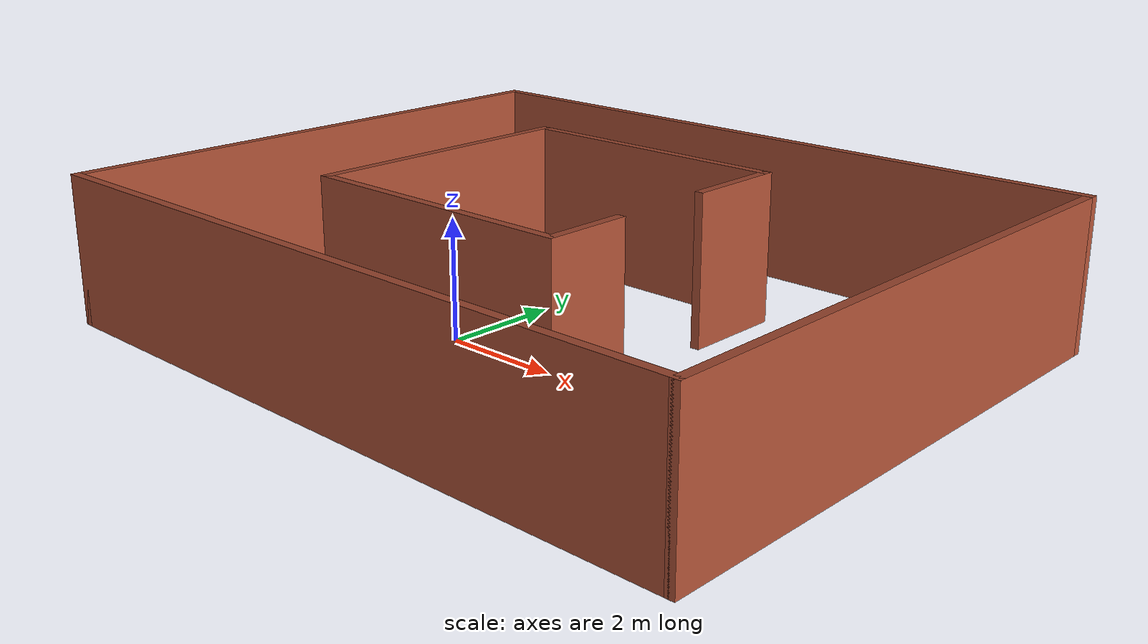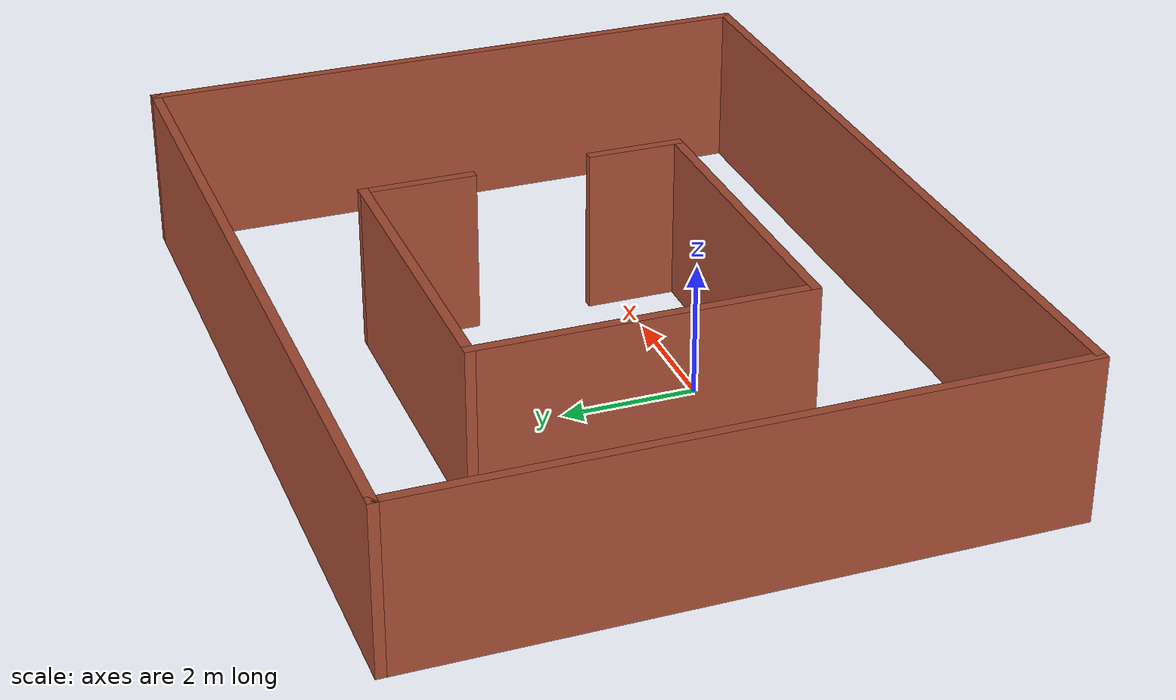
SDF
<sdf version='1.7'>
  <model name='test_world1'>
    <pose>1.22097 1.27622 0 0 -0 0</pose>
    <link name='Wall_10'>
      <collision name='Wall_10_Collision'>
        <geometry>
          <box>
            <size>5 0.15 2.5</size>
          </box>
        </geometry>
        <pose>0 0 1.25 0 -0 0</pose>
      </collision>
      <visual name='Wall_10_Visual'>
        <pose>0 0 1.25 0 -0 0</pose>
        <geometry>
          <box>
            <size>5 0.15 2.5</size>
          </box>
        </geometry>
        <material>
          <script>
            <uri>file://media/materials/scripts/gazebo.material</uri>
            <name>Gazebo/Bricks</name>
          </script>
          <ambient>1 1 1 1</ambient>
        </material>
        <meta>
          <layer>0</layer>
        </meta>
      </visual>
      <pose>-3.12882 0.256793 0 0 -0 -1.5708</pose>
    </link>
    <link name='Wall_11'>
      <collision name='Wall_11_Collision'>
        <geometry>
          <box>
            <size>5 0.15 2.5</size>
          </box>
        </geometry>
        <pose>0 0 1.25 0 -0 0</pose>
      </collision>
      <visual name='Wall_11_Visual'>
        <pose>0 0 1.25 0 -0 0</pose>
        <geometry>
          <box>
            <size>5 0.15 2.5</size>
          </box>
        </geometry>
        <material>
          <script>
            <uri>file://media/materials/scripts/gazebo.material</uri>
            <name>Gazebo/Bricks</name>
          </script>
          <ambient>1 1 1 1</ambient>
        </material>
        <meta>
          <layer>0</layer>
        </meta>
      </visual>
      <pose>-0.703824 -2.16821 0 0 -0 0</pose>
    </link>
    <link name='Wall_15'>
      <collision name='Wall_15_Collision'>
        <geometry>
          <box>
            <size>1.75 0.15 2.5</size>
          </box>
        </geometry>
        <pose>0 0 1.25 0 -0 0</pose>
      </collision>
      <visual name='Wall_15_Visual'>
        <pose>0 0 1.25 0 -0 0</pose>
        <geometry>
          <box>
            <size>1.75 0.15 2.5</size>
          </box>
        </geometry>
        <material>
          <script>
            <uri>file://media/materials/scripts/gazebo.material</uri>
            <name>Gazebo/Bricks</name>
          </script>
          <ambient>1 1 1 1</ambient>
        </material>
        <meta>
          <layer>0</layer>
        </meta>
      </visual>
      <pose>1.72118 1.88179 0 0 -0 -1.5708</pose>
    </link>
    <link name='Wall_17'>
      <collision name='Wall_17_Collision'>
        <geometry>
          <box>
            <size>1.5 0.15 2.5</size>
          </box>
        </geometry>
        <pose>0 0 1.25 0 -0 0</pose>
      </collision>
      <visual name='Wall_17_Visual'>
        <pose>0 0 1.25 0 -0 0</pose>
        <geometry>
          <box>
            <size>1.5 0.15 2.5</size>
          </box>
        </geometry>
        <material>
          <script>
            <uri>file://media/materials/scripts/gazebo.material</uri>
            <name>Gazebo/Bricks</name>
          </script>
          <ambient>1 1 1 1</ambient>
        </material>
        <meta>
          <layer>0</layer>
        </meta>
      </visual>
      <pose>1.72118 -1.49321 0 0 -0 1.5708</pose>
    </link>
    <link name='Wall_4'>
      <collision name='Wall_4_Collision'>
        <geometry>
          <box>
            <size>9.75 0.15 2.5</size>
          </box>
        </geometry>
        <pose>0 0 1.25 0 -0 0</pose>
      </collision>
      <visual name='Wall_4_Visual'>
        <pose>0 0 1.25 0 -0 0</pose>
        <geometry>
          <box>
            <size>9.75 0.15 2.5</size>
          </box>
        </geometry>
        <material>
          <script>
            <uri>file://media/materials/scripts/gazebo.material</uri>
            <name>Gazebo/Bricks</name>
          </script>
          <ambient>1 1 1 1</ambient>
        </material>
        <meta>
          <layer>0</layer>
        </meta>
      </visual>
      <pose>-6.05 -0 0 0 -0 -1.5708</pose>
    </link>
    <link name='Wall_5'>
      <collision name='Wall_5_Collision'>
        <geometry>
          <box>
            <size>12.25 0.15 2.5</size>
          </box>
        </geometry>
        <pose>0 0 1.25 0 -0 0</pose>
      </collision>
      <visual name='Wall_5_Visual'>
        <pose>0 0 1.25 0 -0 0</pose>
        <geometry>
          <box>
            <size>12.25 0.15 2.5</size>
          </box>
        </geometry>
        <material>
          <script>
            <uri>file://media/materials/scripts/gazebo.material</uri>
            <name>Gazebo/Bricks</name>
          </script>
          <ambient>1 1 1 1</ambient>
        </material>
        <meta>
          <layer>0</layer>
        </meta>
      </visual>
      <pose>-0 -4.8 0 0 -0 0</pose>
    </link>
    <link name='Wall_6'>
      <collision name='Wall_6_Collision'>
        <geometry>
          <box>
            <size>9.75 0.15 2.5</size>
          </box>
        </geometry>
        <pose>0 0 1.25 0 -0 0</pose>
      </collision>
      <visual name='Wall_6_Visual'>
        <pose>0 0 1.25 0 -0 0</pose>
        <geometry>
          <box>
            <size>9.75 0.15 2.5</size>
          </box>
        </geometry>
        <material>
          <script>
            <uri>file://media/materials/scripts/gazebo.material</uri>
            <name>Gazebo/Bricks</name>
          </script>
          <ambient>1 1 1 1</ambient>
        </material>
        <meta>
          <layer>0</layer>
        </meta>
      </visual>
      <pose>6.05 -0 0 0 -0 1.5708</pose>
    </link>
    <link name='Wall_7'>
      <collision name='Wall_7_Collision'>
        <geometry>
          <box>
            <size>12.25 0.15 2.5</size>
          </box>
        </geometry>
        <pose>0 0 1.25 0 -0 0</pose>
      </collision>
      <visual name='Wall_7_Visual'>
        <pose>0 0 1.25 0 -0 0</pose>
        <geometry>
          <box>
            <size>12.25 0.15 2.5</size>
          </box>
        </geometry>
        <material>
          <script>
            <uri>file://media/materials/scripts/gazebo.material</uri>
            <name>Gazebo/Bricks</name>
          </script>
          <ambient>1 1 1 1</ambient>
        </material>
        <meta>
          <layer>0</layer>
        </meta>
      </visual>
      <pose>-0 4.8 0 0 -0 3.14159</pose>
    </link>
    <link name='Wall_9'>
      <collision name='Wall_9_Collision'>
        <geometry>
          <box>
            <size>5 0.15 2.5</size>
          </box>
        </geometry>
        <pose>0 0 1.25 0 -0 0</pose>
      </collision>
      <visual name='Wall_9_Visual'>
        <pose>0 0 1.25 0 -0 0</pose>
        <geometry>
          <box>
            <size>5 0.15 2.5</size>
          </box>
        </geometry>
        <material>
          <script>
            <uri>file://media/materials/scripts/gazebo.material</uri>
            <name>Gazebo/Bricks</name>
          </script>
          <ambient>1 1 1 1</ambient>
        </material>
        <meta>
          <layer>0</layer>
        </meta>
      </visual>
      <pose>-0.703824 2.68179 0 0 -0 3.14159</pose>
    </link>
    <static>1</static>
  </model>
</sdf>
